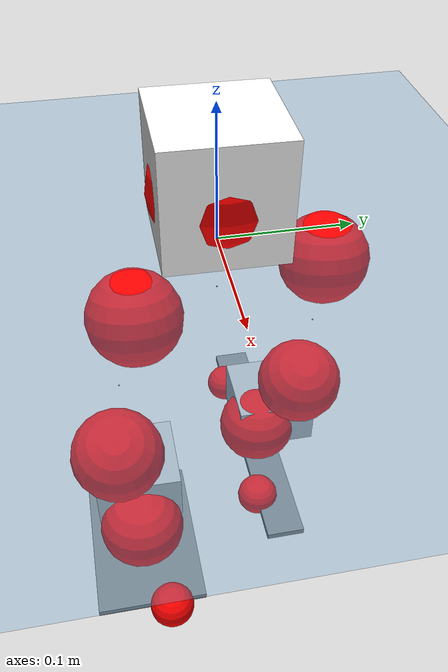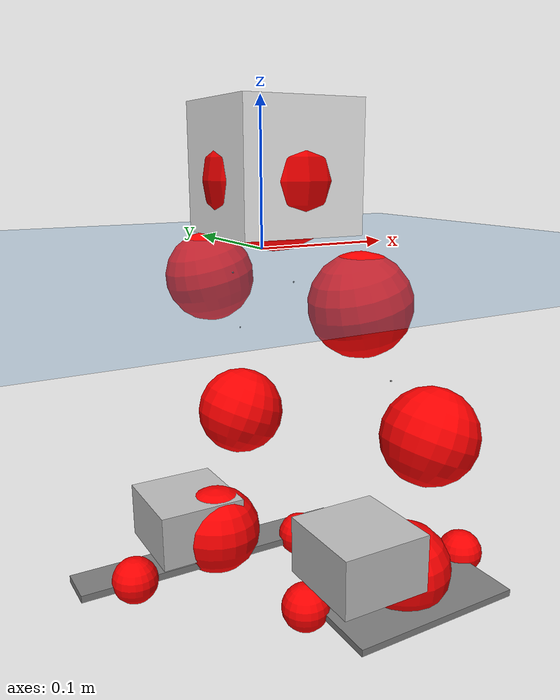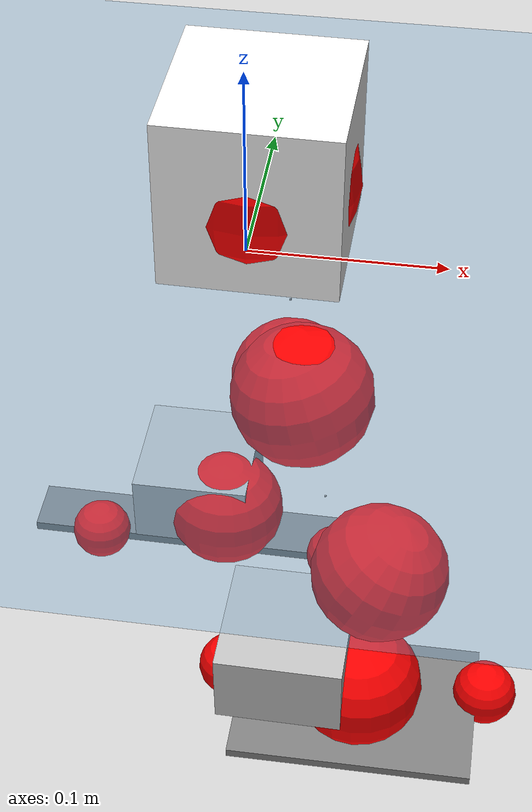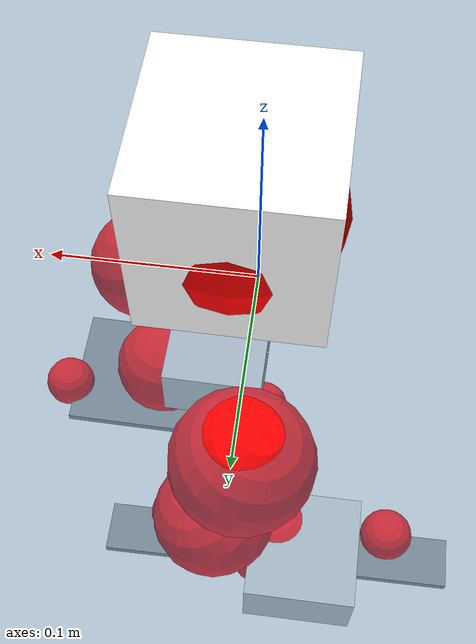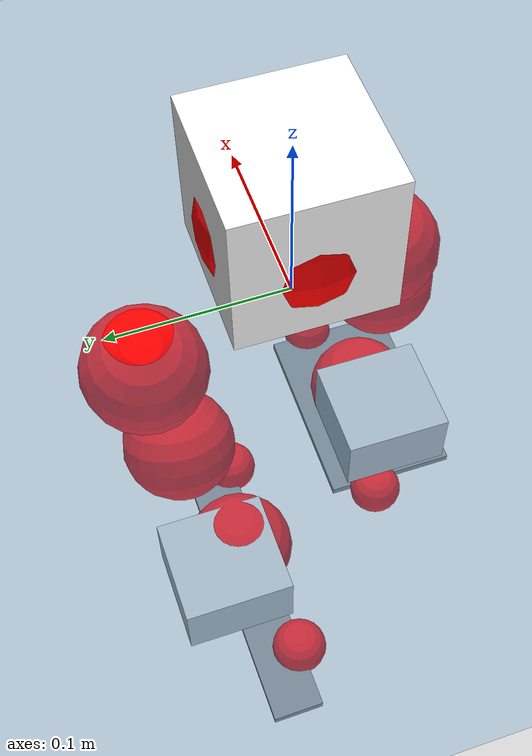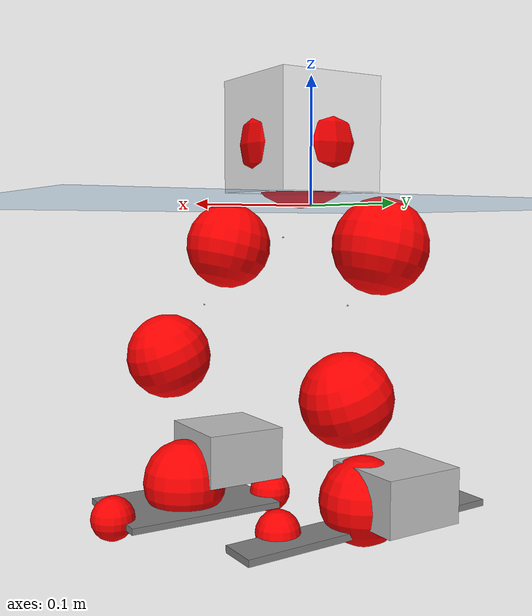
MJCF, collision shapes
<mujoco model="pi_12dof_release_v1">
  <compiler angle="radian" assetdir="assets" balanceinertia="true" inertiafromgeom="false"/>

  <option timestep="0.005" density="1.2" viscosity="2e-05"/>

  <size nkey="1"/>

  <visual>
    <quality shadowsize="8192"/>
    <map shadowclip="0.5"/>
  </visual>

  <default>
    <default class="/">
      <joint armature="0.01" damping="0.01" frictionloss="0.01"/>
      <geom contype="0" conaffinity="0" group="1" solref="-1000 -80"/>
      <site size="0.01 0.005 0.005" group="5"/>
      <general forcelimited="true" biastype="affine" gainprm="20" biasprm="0 -20 -0.5"/>
      <default class="foot">
        <geom size="0.0845 0.036 0.005" type="box" condim="6" group="4" priority="1" friction="0.9 0.2 0.2" solimp="0.015 1 0.005"/>
      </default>
      <default class="reward_collision_sphere">
        <geom group="5" rgba="1 0 0 1"/>
      </default>
    </default>
  </default>

  <asset>
    <texture type="skybox" colorspace="auto" name="//unnamed_texture_0" builtin="gradient" rgb1="0.95 0.95 0.95" rgb2="0.95 0.95 0.95" width="100" height="600"/>
    <texture type="2d" colorspace="auto" name="texplane" builtin="checker" rgb1="0.345 0.575 0.748" rgb2="0.345 0.575 0.748" markrgb="1 1 1" width="512" height="512"/>
    <material name="MatPlane" class="/" texture="texplane" texuniform="true" texrepeat="2 2" specular="0.9"/>
    <mesh name="baselink_1" class="/" file="baselink_1.STL"/>
    <mesh name="r_hip_pitch_link" class="/" file="r_hip_pitch_link.STL"/>
    <mesh name="r_hip_roll_link" class="/" file="r_hip_roll_link.STL"/>
    <mesh name="r_thigh_link" class="/" file="r_thigh_link.STL"/>
    <mesh name="r_calf_link" class="/" file="r_calf_link.STL"/>
    <mesh name="r_ankle_pitch_link" class="/" file="r_ankle_pitch_link.STL"/>
    <mesh name="r_ankle_roll_link" class="/" file="r_ankle_roll_link.STL"/>
    <mesh name="l_hip_pitch_link" class="/" file="l_hip_pitch_link.STL"/>
    <mesh name="l_hip_roll_link" class="/" file="l_hip_roll_link.STL"/>
    <mesh name="l_thigh_link" class="/" file="l_thigh_link.STL"/>
    <mesh name="l_calf_link" class="/" file="l_calf_link.STL"/>
    <mesh name="l_ankle_pitch_link" class="/" file="l_ankle_pitch_link.STL"/>
    <mesh name="l_ankle_roll_link" class="/" file="l_ankle_roll_link.STL"/>
  </asset>

  <worldbody>
    <geom name="floor" class="/" size="100 100 0.125" type="plane" group="0" material="MatPlane"/>
    <light name="toplight_shadow" class="/" pos="0 0 5" dir="0.0990148 0.0990148 -0.990148" type="directional" ambient="0.04 0.04 0.04" diffuse="0.55 0.55 0.55" specular="0.12 0.12 0.12"/>
    <light name="toplight_fill" class="/" pos="0 0 5" dir="0.0990148 0.0990148 -0.990148" type="directional" castshadow="false" ambient="0.04 0.04 0.04" diffuse="0.3 0.3 0.3" specular="0.08 0.08 0.08"/>
    <body name="trunk" pos="0.00830014 -0.00205752 -0.0096155" quat="0.999985 -0.00277526 0.00100387 -0.00457639">
      <inertial pos="0.0220727 0.0163265 0.0425559" quat="0.721484 0.00258129 0.000783841 0.692426" mass="1.02144" diaginertia="0.0119593 0.00208085 0.00109528"/>
      <joint name="//unnamed_joint_0" type="free"/>
      <geom name="//unnamed_geom_1" class="/" type="mesh" density="0" rgba="1 1 1 1" mesh="baselink_1"/>
      <geom name="//unnamed_geom_2" class="/" size="0.0433467 0.0433467 0.0433467" pos="0 0 0.0632406" type="box" rgba="1 1 1 1"/>
      <geom name="//unnamed_geom_3" class="reward_collision_sphere" size="0.0476814" pos="0 0 0.0553355"/>
      <site name="imu" class="/" pos="-0.0877199 0.00534746 0.0874391" size="0.00866935"/>
      <camera name="track" class="/" pos="0 -1.49847 0" quat="0.707107 0.707107 0 0" mode="trackcom"/>
      <camera name="ego_camera" class="/" pos="0.0795797 0 0.142291" quat="-0.5 -0.5 0.5 0.5"/>
      <body name="r_hip_pitch_link" pos="0.014829 -0.00204616 -0.0147254" quat="0.992525 -0.00131407 -0.122029 0.000895377">
        <inertial pos="0.00229615 -0.026661 0.00501968" quat="-0.0124389 0.703347 -0.0265897 0.71024" mass="0.255975" diaginertia="0.000174132 3.43635e-05 3.11608e-05"/>
        <joint name="r_hip_pitch_joint" class="/" pos="0 0 0" axis="0.0479937 -0.998708 -0.0166954" range="-1.85047 1.61251" armature="0.0160086" damping="0.0474995" frictionloss="0.0132479"/>
        <geom name="//unnamed_geom_4" class="/" type="mesh" density="0" rgba="0.75294 0.75294 0.75294 1" mesh="r_hip_pitch_link"/>
        <geom name="//unnamed_geom_5" class="/" size="0.000433467 0.000433467 0.000433467" type="box" rgba="0.75294 0.75294 0.75294 1"/>
        <body name="r_hip_roll_link" pos="0.0125399 -0.060887 -0.0112391" quat="0.999964 0.00641252 -0.00250706 -0.00492347">
          <inertial pos="-0.00600877 0.00124726 -0.0601349" quat="0.732494 -0.129645 -0.110414 0.659131" mass="0.31717" diaginertia="0.000488737 8.64994e-05 3.75452e-05"/>
          <joint name="r_hip_roll_joint" class="/" pos="0 0 0" axis="-0.997439 0.0695641 0.0166087" stiffness="0.0202052" range="-0.238886 0.404594" armature="0.0139123" damping="0.0876385" frictionloss="0.000878438"/>
          <geom name="//unnamed_geom_6" class="/" type="mesh" density="0" rgba="0.75294 0.75294 0.75294 1" mesh="r_hip_roll_link"/>
          <geom name="//unnamed_geom_7" class="/" size="0.000433467 0.000433467 0.000433467" type="box" rgba="0.75294 0.75294 0.75294 1"/>
          <geom name="//unnamed_geom_8" class="reward_collision_sphere" size="0.0346774"/>
          <body name="r_thigh_link" pos="0.00191627 -0.0168575 -0.0511327" quat="0.999992 0.000801621 -0.0023639 0.00305177">
            <inertial pos="0.00291281 -0.00657951 -0.0263398" quat="0.734236 0.678684 0.00368427 0.0164935" mass="0.0771437" diaginertia="0.00021878 2.26182e-05 1.76116e-05"/>
            <joint name="r_thigh_joint" class="/" pos="0 0 0" axis="-0.00598373 -0.0333496 -0.999426" range="-0.0181109 0.728224" armature="9.0715e-05" damping="0.0453885" frictionloss="0.00365702"/>
            <geom name="//unnamed_geom_9" class="/" type="mesh" density="0" rgba="0.75294 0.75294 0.75294 1" mesh="r_thigh_link"/>
            <geom name="//unnamed_geom_10" class="/" size="0.000433467 0.000433467 0.000433467" type="box" rgba="0.75294 0.75294 0.75294 1"/>
            <body name="r_calf_link" pos="0.0178902 -0.00787125 -0.0479181" quat="0.947587 8.62419e-05 0.319497 0.00071898">
              <inertial pos="0.0128183 0.0188787 -0.041709" quat="0.995949 0.00786999 0.0673528 -0.0590484" mass="0.516049" diaginertia="0.00515935 0.000591749 5.83405e-05"/>
              <joint name="r_calf_joint" class="/" pos="0 0 0" axis="0.0576149 -0.997651 -0.0370479" range="-1.62252 0.438892" armature="0.0141549" damping="0.0481937" frictionloss="0.00643933"/>
              <geom name="//unnamed_geom_11" class="/" type="mesh" density="0" rgba="0.75294 0.75294 0.75294 1" mesh="r_calf_link"/>
              <geom name="//unnamed_geom_12" class="/" size="0.000433467 0.000433467 0.000433467" type="box" rgba="0.75294 0.75294 0.75294 1"/>
              <geom name="//unnamed_geom_13" class="reward_collision_sphere" size="0.0346774"/>
              <body name="r_ankle_pitch_link" pos="-0.0119241 0.0118589 -0.0948134" quat="0.97926 -0.00586507 -0.202488 -0.00364463">
                <inertial pos="-0.0126644 0.0115781 0.0123272" quat="-0.00584205 0.746603 0.0215349 0.664895" mass="0.101342" diaginertia="0.000524924 6.83391e-05 3.14373e-05"/>
                <joint name="r_ankle_pitch_joint" class="/" pos="0 0 0" axis="-0.0131272 -0.997656 0.0671634" stiffness="0.070159" range="-1.62995 0.231006" armature="0.00351207" damping="0.0833737" frictionloss="0.0110665"/>
                <geom name="//unnamed_geom_14" class="/" type="mesh" density="0" rgba="0.75294 0.75294 0.75294 1" mesh="r_ankle_pitch_link"/>
                <geom name="//unnamed_geom_15" class="/" size="0.0338105 0.0346774 0.0216734" type="box" rgba="0.75294 0.75294 0.75294 1"/>
                <body name="r_ankle_roll_link" pos="0.0924544 -0.000347294 -0.00607018" quat="0.999981 0.00270328 -0.00429313 0.0035286">
                  <inertial pos="-0.0104027 -0.000188841 -0.0123981" quat="0.563046 0.489893 0.450457 0.489971" mass="0.231237" diaginertia="0.00107383 0.000224774 6.87199e-05"/>
                  <joint name="r_ankle_roll_joint" class="/" pos="0 0 0" axis="-0.998191 0.0386887 0.0460219" stiffness="0.0243355" range="-0.417697 0.0851213" armature="0.000794013" damping="0" frictionloss="0.00502671"/>
                  <geom name="//unnamed_geom_16" class="/" type="mesh" density="0" rgba="0.75294 0.75294 0.75294 1" mesh="r_ankle_roll_link"/>
                  <geom name="//unnamed_geom_17" class="/" type="mesh" rgba="0.75294 0.75294 0.75294 1" mesh="r_ankle_roll_link"/>
                  <geom name="right_foot" class="foot" size="0.0656761 0.0430909 0.00257753" pos="-0.0541142 0 -0.0347823"/>
                  <geom name="//unnamed_geom_19" class="reward_collision_sphere" size="0.0346774" pos="-0.0530531 0 -0.0158102"/>
                  <geom name="//unnamed_geom_20" class="reward_collision_sphere" size="0.0173387" pos="0.0159159 0.0149847 -0.0316203"/>
                  <geom name="//unnamed_geom_21" class="reward_collision_sphere" size="0.0173387" pos="-0.127328 0.0149847 -0.0316203"/>
                  <site name="right_foot" class="foot" pos="-0.0541142 0 -0.0347823" size="0.00866935"/>
                </body>
              </body>
            </body>
          </body>
        </body>
      </body>
      <body name="l_hip_pitch_link" pos="-0.0167053 0.0313764 -0.00993394" quat="0.992393 0.000829508 -0.123103 0.00107262">
        <inertial pos="0.0021479 0.0269699 0.0180738" quat="0.0311205 0.685714 0.0442923 0.725856" mass="0.196728" diaginertia="0.000100801 2.11075e-05 2.77384e-05"/>
        <joint name="l_hip_pitch_joint" class="/" pos="0 0 0" axis="-0.00293525 0.999789 -0.0203105" stiffness="0.0675038" range="-1.38543 1.78772" armature="0.0067932" damping="0" frictionloss="0.0145567"/>
        <geom name="//unnamed_geom_22" class="/" type="mesh" density="0" rgba="0.75294 0.75294 0.75294 1" mesh="l_hip_pitch_link"/>
        <geom name="//unnamed_geom_23" class="/" size="0.000433467 0.000433467 0.000433467" type="box" rgba="0.75294 0.75294 0.75294 1"/>
        <body name="l_hip_roll_link" pos="0.00233926 0.0531215 -0.0108844" quat="0.999988 -0.00134497 0.00150634 -0.00454598">
          <inertial pos="0.0172763 -0.00928139 -0.0297848" quat="0.690885 -0.0675374 -0.0839864 0.714887" mass="0.33606" diaginertia="0.000651332 6.35616e-05 4.08341e-05"/>
          <joint name="l_hip_roll_joint" class="/" pos="0 0 0" axis="-0.999207 -0.0199853 -0.0344333" stiffness="0.0209664" range="-0.692129 0.2662" armature="0.0120101" damping="0" frictionloss="0.0140132"/>
          <geom name="//unnamed_geom_24" class="/" type="mesh" density="0" rgba="0.75294 0.75294 0.75294 1" mesh="l_hip_roll_link"/>
          <geom name="//unnamed_geom_25" class="/" size="0.000433467 0.000433467 0.000433467" type="box" rgba="0.75294 0.75294 0.75294 1"/>
          <geom name="//unnamed_geom_26" class="reward_collision_sphere" size="0.0346774"/>
          <body name="l_thigh_link" pos="0.0102381 -0.0100094 -0.0455801" quat="1 0.000249024 -0.000374394 -1.71395e-05">
            <inertial pos="-0.0116713 -0.017478 -0.0283066" quat="0.660288 0.748403 -0.060345 -0.0164703" mass="0.0565089" diaginertia="0.00014845 1.34201e-05 1.19663e-05"/>
            <joint name="l_thigh_joint" class="/" pos="0 0 0" axis="0.0255191 0.010491 -0.999619" stiffness="0.0806739" range="-0.243093 0.554252" armature="0.00502426" damping="0" frictionloss="0.00723736"/>
            <geom name="//unnamed_geom_27" class="/" type="mesh" density="0" rgba="0.75294 0.75294 0.75294 1" mesh="l_thigh_link"/>
            <geom name="//unnamed_geom_28" class="/" size="0.000433467 0.000433467 0.000433467" type="box" rgba="0.75294 0.75294 0.75294 1"/>
            <body name="l_calf_link" pos="-0.0195211 -0.00461211 -0.0660055" quat="0.947837 0.00083472 0.318747 0.0021834">
              <inertial pos="0.0129388 -0.00911479 -0.0369576" quat="0.995109 0.0800263 -0.0175969 -0.0551684" mass="0.527965" diaginertia="0.005728 0.000982211 6.82088e-05"/>
              <joint name="l_calf_joint" class="/" pos="0 0 0" axis="0.0361418 0.997069 0.0674393" range="-0.588787 1.45692" armature="0.00650653" damping="0.0737685" frictionloss="0.00437276"/>
              <geom name="//unnamed_geom_29" class="/" type="mesh" density="0" rgba="0.75294 0.75294 0.75294 1" mesh="l_calf_link"/>
              <geom name="//unnamed_geom_30" class="/" size="0.000433467 0.000433467 0.000433467" type="box" rgba="0.75294 0.75294 0.75294 1"/>
              <geom name="//unnamed_geom_31" class="reward_collision_sphere" size="0.0346774"/>
              <body name="l_ankle_pitch_link" pos="-0.0183832 -0.00962059 -0.0939289" quat="0.979108 0.000248014 -0.20324 0.00641307">
                <inertial pos="0.00095436 -0.0131474 -0.00797702" quat="-0.00372501 0.711145 0.0101813 0.702962" mass="0.157787" diaginertia="0.000570192 6.49246e-05 4.63438e-05"/>
                <joint name="l_ankle_pitch_joint" class="/" pos="0 0 0" axis="-0.0143712 0.999863 0.00815559" range="-0.267211 1.56895" armature="0.0137687" damping="0.0105353" frictionloss="0.00410601"/>
                <geom name="//unnamed_geom_32" class="/" type="mesh" density="0" rgba="0.75294 0.75294 0.75294 1" mesh="l_ankle_pitch_link"/>
                <geom name="//unnamed_geom_33" class="/" size="0.0338105 0.0346774 0.0216734" type="box" rgba="0.75294 0.75294 0.75294 1"/>
                <body name="l_ankle_roll_link" pos="0.0719466 -0.0153429 0.0066722" quat="0.999961 -0.00561897 0.00595713 0.00315971">
                  <inertial pos="-0.0407799 0.0110171 -0.0200221" quat="0.564426 0.403516 0.385653 0.608169" mass="0.316579" diaginertia="0.00181931 0.000237989 9.74003e-05"/>
                  <joint name="l_ankle_roll_joint" class="/" pos="0 0 0" axis="-1 -0.000489451 0.000547212" stiffness="0.0870145" range="-0.474694 0.427143" armature="0.00127607" damping="0" frictionloss="0.00392229"/>
                  <geom name="//unnamed_geom_34" class="/" type="mesh" density="0" rgba="0.75294 0.75294 0.75294 1" mesh="l_ankle_roll_link"/>
                  <geom name="//unnamed_geom_35" class="/" type="mesh" rgba="0.75294 0.75294 0.75294 1" mesh="l_ankle_roll_link"/>
                  <geom name="left_foot" class="foot" size="0.11404 0.0159655 0.00278644" pos="-0.0541142 0 -0.0347823"/>
                  <geom name="//unnamed_geom_37" class="reward_collision_sphere" size="0.0346774" pos="-0.0530531 0 -0.0158102"/>
                  <geom name="//unnamed_geom_38" class="reward_collision_sphere" size="0.0173387" pos="0.0159159 -0.0149847 -0.0316203"/>
                  <geom name="//unnamed_geom_39" class="reward_collision_sphere" size="0.0173387" pos="-0.127328 -0.0149847 -0.0316203"/>
                  <site name="left_foot" class="foot" pos="-0.0541142 0 -0.0347823" size="0.00866935"/>
                </body>
              </body>
            </body>
          </body>
        </body>
      </body>
    </body>
  </worldbody>

  <contact>
    <pair class="/" geom1="floor" geom2="right_foot" name="//unnamed_contact_1"/>
    <pair class="/" geom1="floor" geom2="left_foot" name="//unnamed_contact_0"/>
  </contact>

  <actuator>
    <general name="r_hip_pitch_joint" class="/" joint="r_hip_pitch_joint" forcerange="-7.75885 7.75885" gainprm="25.8835" biasprm="0 -25.8835 -0.459544"/>
    <general name="r_hip_roll_joint" class="/" joint="r_hip_roll_joint" forcerange="-16.7892 16.7892" gainprm="25.8835" biasprm="0 -25.8835 -0.459544"/>
    <general name="r_thigh_joint" class="/" joint="r_thigh_joint" forcerange="-14.7859 14.7859" gainprm="25.8835" biasprm="0 -25.8835 -0.459544"/>
    <general name="r_calf_joint" class="/" joint="r_calf_joint" forcerange="-6.3937 6.3937" gainprm="25.8835" biasprm="0 -25.8835 -0.459544"/>
    <general name="r_ankle_pitch_joint" class="/" joint="r_ankle_pitch_joint" forcerange="-13.4507 13.4507" gainprm="25.8835" biasprm="0 -25.8835 -0.459544"/>
    <general name="r_ankle_roll_joint" class="/" joint="r_ankle_roll_joint" forcerange="-22.1025 22.1025" gainprm="25.8835" biasprm="0 -25.8835 -0.459544"/>
    <general name="l_hip_pitch_joint" class="/" joint="l_hip_pitch_joint" forcerange="-28.4544 28.4544" gainprm="25.8835" biasprm="0 -25.8835 -0.459544"/>
    <general name="l_hip_roll_joint" class="/" joint="l_hip_roll_joint" forcerange="-30.5662 30.5662" gainprm="25.8835" biasprm="0 -25.8835 -0.459544"/>
    <general name="l_thigh_joint" class="/" joint="l_thigh_joint" forcerange="-24.6661 24.6661" gainprm="25.8835" biasprm="0 -25.8835 -0.459544"/>
    <general name="l_calf_joint" class="/" joint="l_calf_joint" forcerange="-15.6979 15.6979" gainprm="25.8835" biasprm="0 -25.8835 -0.459544"/>
    <general name="l_ankle_pitch_joint" class="/" joint="l_ankle_pitch_joint" forcerange="-8.61589 8.61589" gainprm="25.8835" biasprm="0 -25.8835 -0.459544"/>
    <general name="l_ankle_roll_joint" class="/" joint="l_ankle_roll_joint" forcerange="-23.2063 23.2063" gainprm="25.8835" biasprm="0 -25.8835 -0.459544"/>
  </actuator>

  <sensor>
    <gyro site="imu" name="imu_angular_velocity"/>
    <velocimeter site="imu" name="imu_linear_velocity"/>
    <framelinvel objtype="site" objname="left_foot" name="left_foot_global_linear_velocity"/>
    <framelinvel objtype="site" objname="right_foot" name="right_foot_global_linear_velocity"/>
  </sensor>

  <keyframe>
    <key name="home" qpos="0 0 0.291 1 0 0 0 0.4 0 0 -0.8 0.4 0 -0.4 0 0 0.8 -0.4 0"/>
  </keyframe>
</mujoco>
